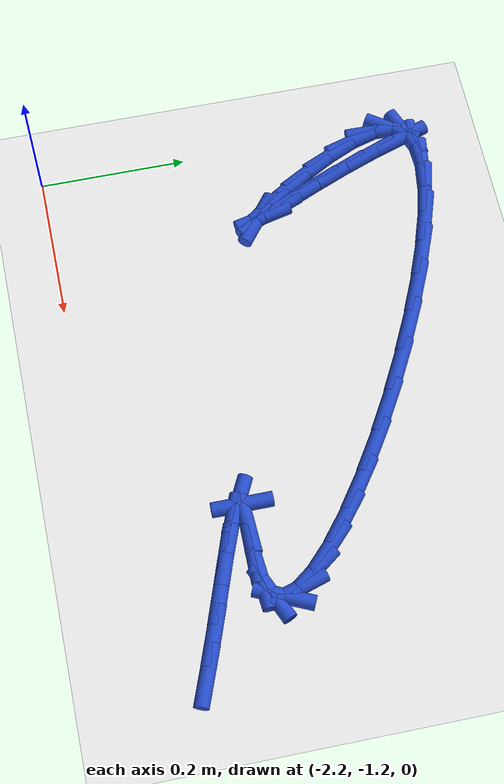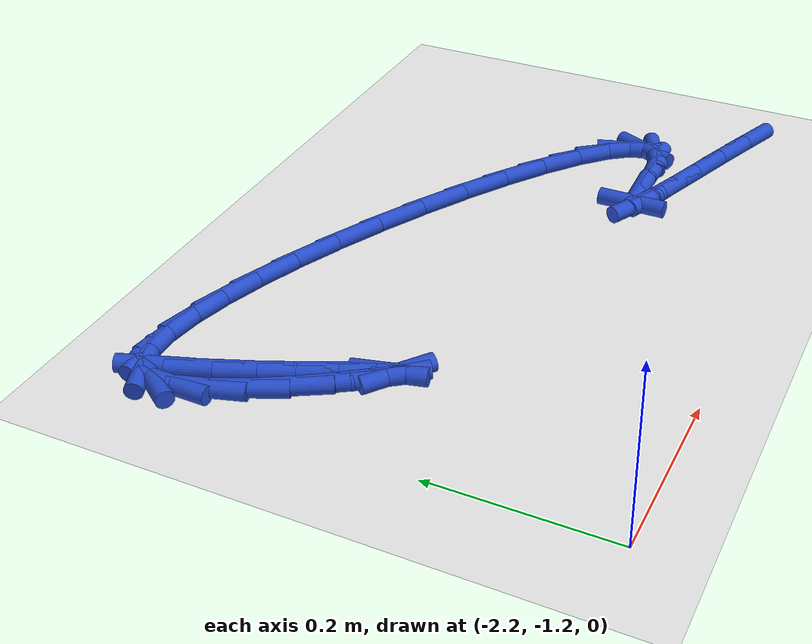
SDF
<sdf version="1.6">
 <world name="default">
  <model name="ground_plane">
   <static>1</static>
   <link name="link">
    <collision name="collision">
     <geometry><plane><normal>0 0 1</normal><size>100 100</size></plane></geometry>
     <surface><friction><ode><mu>100</mu><mu2>50</mu2></ode></friction></surface>
    </collision>
    <visual name="visual">
     <cast_shadows>0</cast_shadows>
     <geometry><plane><normal>0 0 1</normal><size>100 100</size></plane></geometry>
     <material>
      <script><uri>file://media/materials/scripts/gazebo.material</uri><name>Gazebo/WhiteGlow</name></script>
     </material>
    </visual>
   </link>
  </model>
  <model name="line">
   <link name="link_153">
    <pose>-2.170215699457804 -0.694800122695668 0.01 0 1.57 -1.2477217496031399</pose>
    <collision name="collision">
     <geometry><cylinder><radius>0.01</radius><length>0.08</length></cylinder></geometry>
    </collision>
    <visual name="visual">
     <material>
      <script><name>Gazebo/Blue</name><uri>file://media/materials/scripts/gazebo.material</uri></script>
     </material>
     <geometry><cylinder><radius>0.01</radius><length>0.08</length></cylinder></geometry>
    </visual>
   </link>
   <link name="link_154">
    <pose>-2.154115652462246 -0.7428879386356306 0.01 0 1.57 -1.2071258945588343</pose>
    <collision name="collision">
     <geometry><cylinder><radius>0.01</radius><length>0.08</length></cylinder></geometry>
    </collision>
    <visual name="visual">
     <material>
      <script><name>Gazebo/Blue</name><uri>file://media/materials/scripts/gazebo.material</uri></script>
     </material>
     <geometry><cylinder><radius>0.01</radius><length>0.08</length></cylinder></geometry>
    </visual>
   </link>
   <link name="link_155">
    <pose>-2.136890699045401 -0.7881454086210561 0.01 0 1.57 -1.177715644481559</pose>
    <collision name="collision">
     <geometry><cylinder><radius>0.01</radius><length>0.08</length></cylinder></geometry>
    </collision>
    <visual name="visual">
     <material>
      <script><name>Gazebo/Blue</name><uri>file://media/materials/scripts/gazebo.material</uri></script>
     </material>
     <geometry><cylinder><radius>0.01</radius><length>0.08</length></cylinder></geometry>
    </visual>
   </link>
   <link name="link_156">
    <pose>-2.119939343899335 -0.829025470080285 0.01 0 1.57 -1.158717741874571</pose>
    <collision name="collision">
     <geometry><cylinder><radius>0.01</radius><length>0.08</length></cylinder></geometry>
    </collision>
    <visual name="visual">
     <material>
      <script><name>Gazebo/Blue</name><uri>file://media/materials/scripts/gazebo.material</uri></script>
     </material>
     <geometry><cylinder><radius>0.01</radius><length>0.08</length></cylinder></geometry>
    </visual>
   </link>
   <link name="link_157">
    <pose>-2.104660091716117 -0.8639810604416562 0.01 0 1.57 -1.1527692550475948</pose>
    <collision name="collision">
     <geometry><cylinder><radius>0.01</radius><length>0.08</length></cylinder></geometry>
    </collision>
    <visual name="visual">
     <material>
      <script><name>Gazebo/Blue</name><uri>file://media/materials/scripts/gazebo.material</uri></script>
     </material>
     <geometry><cylinder><radius>0.01</radius><length>0.08</length></cylinder></geometry>
    </visual>
   </link>
   <link name="link_158">
    <pose>-2.092451447187813 -0.8914651171335098 0.01 0 1.57 -1.1739033305791617</pose>
    <collision name="collision">
     <geometry><cylinder><radius>0.01</radius><length>0.08</length></cylinder></geometry>
    </collision>
    <visual name="visual">
     <material>
      <script><name>Gazebo/Blue</name><uri>file://media/materials/scripts/gazebo.material</uri></script>
     </material>
     <geometry><cylinder><radius>0.01</radius><length>0.08</length></cylinder></geometry>
    </visual>
   </link>
   <link name="link_159">
    <pose>-2.084711915006492 -0.9099305775841868 0.01 0 1.57 -1.3381303744596913</pose>
    <collision name="collision">
     <geometry><cylinder><radius>0.01</radius><length>0.08</length></cylinder></geometry>
    </collision>
    <visual name="visual">
     <material>
      <script><name>Gazebo/Blue</name><uri>file://media/materials/scripts/gazebo.material</uri></script>
     </material>
     <geometry><cylinder><radius>0.01</radius><length>0.08</length></cylinder></geometry>
    </visual>
   </link>
   <link name="link_160">
    <pose>-2.0828399998642193 -0.9178303792220269 0.01 0 1.57 -0.663052779532103</pose>
    <collision name="collision">
     <geometry><cylinder><radius>0.01</radius><length>0.08</length></cylinder></geometry>
    </collision>
    <visual name="visual">
     <material>
      <script><name>Gazebo/Blue</name><uri>file://media/materials/scripts/gazebo.material</uri></script>
     </material>
     <geometry><cylinder><radius>0.01</radius><length>0.08</length></cylinder></geometry>
    </visual>
   </link>
   <link name="link_161">
    <pose>-2.0882342048246754 -0.9136174612802785 0.01 0 1.57 -0.9079224944514392</pose>
    <collision name="collision">
     <geometry><cylinder><radius>0.01</radius><length>0.08</length></cylinder></geometry>
    </collision>
    <visual name="visual">
     <material>
      <script><name>Gazebo/Blue</name><uri>file://media/materials/scripts/gazebo.material</uri></script>
     </material>
     <geometry><cylinder><radius>0.01</radius><length>0.08</length></cylinder></geometry>
    </visual>
   </link>
   <link name="link_162">
    <pose>-2.1015113373813183 -0.8966111961324358 0.01 0 1.57 -0.9658640324050661</pose>
    <collision name="collision">
     <geometry><cylinder><radius>0.01</radius><length>0.08</length></cylinder></geometry>
    </collision>
    <visual name="visual">
     <material>
      <script><name>Gazebo/Blue</name><uri>file://media/materials/scripts/gazebo.material</uri></script>
     </material>
     <geometry><cylinder><radius>0.01</radius><length>0.08</length></cylinder></geometry>
    </visual>
   </link>
   <link name="link_163">
    <pose>-2.1202804247890605 -0.8694647865797507 0.01 0 1.57 -1.0121547896068612</pose>
    <collision name="collision">
     <geometry><cylinder><radius>0.01</radius><length>0.08</length></cylinder></geometry>
    </collision>
    <visual name="visual">
     <material>
      <script><name>Gazebo/Blue</name><uri>file://media/materials/scripts/gazebo.material</uri></script>
     </material>
     <geometry><cylinder><radius>0.01</radius><length>0.08</length></cylinder></geometry>
    </visual>
   </link>
   <link name="link_164">
    <pose>-2.141427175842185 -0.8356331632432495 0.01 0 1.57 -1.0674131225052652</pose>
    <collision name="collision">
     <geometry><cylinder><radius>0.01</radius><length>0.08</length></cylinder></geometry>
    </collision>
    <visual name="visual">
     <material>
      <script><name>Gazebo/Blue</name><uri>file://media/materials/scripts/gazebo.material</uri></script>
     </material>
     <geometry><cylinder><radius>0.01</radius><length>0.08</length></cylinder></geometry>
    </visual>
   </link>
   <link name="link_165">
    <pose>-2.161837299334973 -0.7985712567439587 0.01 0 1.57 -1.1483389298229063</pose>
    <collision name="collision">
     <geometry><cylinder><radius>0.01</radius><length>0.08</length></cylinder></geometry>
    </collision>
    <visual name="visual">
     <material>
      <script><name>Gazebo/Blue</name><uri>file://media/materials/scripts/gazebo.material</uri></script>
     </material>
     <geometry><cylinder><radius>0.01</radius><length>0.08</length></cylinder></geometry>
    </visual>
   </link>
   <link name="link_166">
    <pose>-2.178396504061706 -0.7617339977029077 0.01 0 1.57 -1.2891436003595655</pose>
    <collision name="collision">
     <geometry><cylinder><radius>0.01</radius><length>0.08</length></cylinder></geometry>
    </collision>
    <visual name="visual">
     <material>
      <script><name>Gazebo/Blue</name><uri>file://media/materials/scripts/gazebo.material</uri></script>
     </material>
     <geometry><cylinder><radius>0.01</radius><length>0.08</length></cylinder></geometry>
    </visual>
   </link>
   <link name="link_167">
    <pose>-2.187990498816666 -0.7285763167411219 0.01 0 1.57 1.5533036885885039</pose>
    <collision name="collision">
     <geometry><cylinder><radius>0.01</radius><length>0.08</length></cylinder></geometry>
    </collision>
    <visual name="visual">
     <material>
      <script><name>Gazebo/Blue</name><uri>file://media/materials/scripts/gazebo.material</uri></script>
     </material>
     <geometry><cylinder><radius>0.01</radius><length>0.08</length></cylinder></geometry>
    </visual>
   </link>
   <link name="link_168">
    <pose>-2.187534748318673 -0.7025251284484969 0.01 0 1.57 0.963632447593937</pose>
    <collision name="collision">
     <geometry><cylinder><radius>0.01</radius><length>0.08</length></cylinder></geometry>
    </collision>
    <visual name="visual">
     <material>
      <script><name>Gazebo/Blue</name><uri>file://media/materials/scripts/gazebo.material</uri></script>
     </material>
     <geometry><cylinder><radius>0.01</radius><length>0.08</length></cylinder></geometry>
    </visual>
   </link>
   <link name="link_169">
    <pose>-2.1756433851299075 -0.6854080043623427 0.01 0 1.57 0.3780579672440051</pose>
    <collision name="collision">
     <geometry><cylinder><radius>0.01</radius><length>0.08</length></cylinder></geometry>
    </collision>
    <visual name="visual">
     <material>
      <script><name>Gazebo/Blue</name><uri>file://media/materials/scripts/gazebo.material</uri></script>
     </material>
     <geometry><cylinder><radius>0.01</radius><length>0.08</length></cylinder></geometry>
    </visual>
   </link>
   <link name="link_170">
    <pose>-2.153514805560977 -0.6766193597744791 0.01 0 1.57 0.04100315836611371</pose>
    <collision name="collision">
     <geometry><cylinder><radius>0.01</radius><length>0.08</length></cylinder></geometry>
    </collision>
    <visual name="visual">
     <material>
      <script><name>Gazebo/Blue</name><uri>file://media/materials/scripts/gazebo.material</uri></script>
     </material>
     <geometry><cylinder><radius>0.01</radius><length>0.08</length></cylinder></geometry>
    </visual>
   </link>
   <link name="link_171">
    <pose>-2.1225641153405865 -0.6753495720280347 0.01 0 1.57 -0.14086921430115382</pose>
    <collision name="collision">
     <geometry><cylinder><radius>0.01</radius><length>0.08</length></cylinder></geometry>
    </collision>
    <visual name="visual">
     <material>
      <script><name>Gazebo/Blue</name><uri>file://media/materials/scripts/gazebo.material</uri></script>
     </material>
     <geometry><cylinder><radius>0.01</radius><length>0.08</length></cylinder></geometry>
    </visual>
   </link>
   <link name="link_172">
    <pose>-2.084206420197441 -0.6807890184661382 0.01 0 1.57 -0.25031214654142153</pose>
    <collision name="collision">
     <geometry><cylinder><radius>0.01</radius><length>0.08</length></cylinder></geometry>
    </collision>
    <visual name="visual">
     <material>
      <script><name>Gazebo/Blue</name><uri>file://media/materials/scripts/gazebo.material</uri></script>
     </material>
     <geometry><cylinder><radius>0.01</radius><length>0.08</length></cylinder></geometry>
    </visual>
   </link>
   <link name="link_173">
    <pose>-2.0398568258602494 -0.6921280764319176 0.01 0 1.57 -0.32396093412667765</pose>
    <collision name="collision">
     <geometry><cylinder><radius>0.01</radius><length>0.08</length></cylinder></geometry>
    </collision>
    <visual name="visual">
     <material>
      <script><name>Gazebo/Blue</name><uri>file://media/materials/scripts/gazebo.material</uri></script>
     </material>
     <geometry><cylinder><radius>0.01</radius><length>0.08</length></cylinder></geometry>
    </visual>
   </link>
   <link name="link_174">
    <pose>-1.9909304380577157 -0.7085571232685017 0.01 0 1.57 -0.37842234287689996</pose>
    <collision name="collision">
     <geometry><cylinder><radius>0.01</radius><length>0.08</length></cylinder></geometry>
    </collision>
    <visual name="visual">
     <material>
      <script><name>Gazebo/Blue</name><uri>file://media/materials/scripts/gazebo.material</uri></script>
     </material>
     <geometry><cylinder><radius>0.01</radius><length>0.08</length></cylinder></geometry>
    </visual>
   </link>
   <link name="link_175">
    <pose>-1.9388423625185476 -0.7292665363190187 0.01 0 1.57 -0.4221517895343474</pose>
    <collision name="collision">
     <geometry><cylinder><radius>0.01</radius><length>0.08</length></cylinder></geometry>
    </collision>
    <visual name="visual">
     <material>
      <script><name>Gazebo/Blue</name><uri>file://media/materials/scripts/gazebo.material</uri></script>
     </material>
     <geometry><cylinder><radius>0.01</radius><length>0.08</length></cylinder></geometry>
    </visual>
   </link>
   <link name="link_176">
    <pose>-1.8850077049714502 -0.7534466929265976 0.01 0 1.57 -0.46007015790092187</pose>
    <collision name="collision">
     <geometry><cylinder><radius>0.01</radius><length>0.08</length></cylinder></geometry>
    </collision>
    <visual name="visual">
     <material>
      <script><name>Gazebo/Blue</name><uri>file://media/materials/scripts/gazebo.material</uri></script>
     </material>
     <geometry><cylinder><radius>0.01</radius><length>0.08</length></cylinder></geometry>
    </visual>
   </link>
   <link name="link_177">
    <pose>-1.8308415711451294 -0.7802879704343663 0.01 0 1.57 -0.4955448234560549</pose>
    <collision name="collision">
     <geometry><cylinder><radius>0.01</radius><length>0.08</length></cylinder></geometry>
    </collision>
    <visual name="visual">
     <material>
      <script><name>Gazebo/Blue</name><uri>file://media/materials/scripts/gazebo.material</uri></script>
     </material>
     <geometry><cylinder><radius>0.01</radius><length>0.08</length></cylinder></geometry>
    </visual>
   </link>
   <link name="link_178">
    <pose>-1.77775906676829 -0.808980746185453 0.01 0 1.57 -0.5314228246272624</pose>
    <collision name="collision">
     <geometry><cylinder><radius>0.01</radius><length>0.08</length></cylinder></geometry>
    </collision>
    <visual name="visual">
     <material>
      <script><name>Gazebo/Blue</name><uri>file://media/materials/scripts/gazebo.material</uri></script>
     </material>
     <geometry><cylinder><radius>0.01</radius><length>0.08</length></cylinder></geometry>
    </visual>
   </link>
   <link name="link_179">
    <pose>-1.7271752975696408 -0.8387153975229873 0.01 0 1.57 -0.5708037295260241</pose>
    <collision name="collision">
     <geometry><cylinder><radius>0.01</radius><length>0.08</length></cylinder></geometry>
    </collision>
    <visual name="visual">
     <material>
      <script><name>Gazebo/Blue</name><uri>file://media/materials/scripts/gazebo.material</uri></script>
     </material>
     <geometry><cylinder><radius>0.01</radius><length>0.08</length></cylinder></geometry>
    </visual>
   </link>
   <link name="link_180">
    <pose>-1.6805053692778857 -0.8686823017900968 0.01 0 1.57 -0.6180077087129339</pose>
    <collision name="collision">
     <geometry><cylinder><radius>0.01</radius><length>0.08</length></cylinder></geometry>
    </collision>
    <visual name="visual">
     <material>
      <script><name>Gazebo/Blue</name><uri>file://media/materials/scripts/gazebo.material</uri></script>
     </material>
     <geometry><cylinder><radius>0.01</radius><length>0.08</length></cylinder></geometry>
    </visual>
   </link>
   <link name="link_181">
    <pose>-1.6391643876217308 -0.898071836329911 0.01 0 1.57 -0.6804427161337173</pose>
    <collision name="collision">
     <geometry><cylinder><radius>0.01</radius><length>0.08</length></cylinder></geometry>
    </collision>
    <visual name="visual">
     <material>
      <script><name>Gazebo/Blue</name><uri>file://media/materials/scripts/gazebo.material</uri></script>
     </material>
     <geometry><cylinder><radius>0.01</radius><length>0.08</length></cylinder></geometry>
    </visual>
   </link>
   <link name="link_182">
    <pose>-1.6045674583298835 -0.926074378485557 0.01 0 1.57 -0.773304584632052</pose>
    <collision name="collision">
     <geometry><cylinder><radius>0.01</radius><length>0.08</length></cylinder></geometry>
    </collision>
    <visual name="visual">
     <material>
      <script><name>Gazebo/Blue</name><uri>file://media/materials/scripts/gazebo.material</uri></script>
     </material>
     <geometry><cylinder><radius>0.01</radius><length>0.08</length></cylinder></geometry>
    </visual>
   </link>
   <link name="link_183">
    <pose>-1.5781296871310495 -0.9518803056001635 0.01 0 1.57 -0.9339602123465944</pose>
    <collision name="collision">
     <geometry><cylinder><radius>0.01</radius><length>0.08</length></cylinder></geometry>
    </collision>
    <visual name="visual">
     <material>
      <script><name>Gazebo/Blue</name><uri>file://media/materials/scripts/gazebo.material</uri></script>
     </material>
     <geometry><cylinder><radius>0.01</radius><length>0.08</length></cylinder></geometry>
    </visual>
   </link>
   <link name="link_184">
    <pose>-1.561266179753934 -0.9746799950168594 0.01 0 1.57 -1.2707121313820173</pose>
    <collision name="collision">
     <geometry><cylinder><radius>0.01</radius><length>0.08</length></cylinder></geometry>
    </collision>
    <visual name="visual">
     <material>
      <script><name>Gazebo/Blue</name><uri>file://media/materials/scripts/gazebo.material</uri></script>
     </material>
     <geometry><cylinder><radius>0.01</radius><length>0.08</length></cylinder></geometry>
    </visual>
   </link>
   <link name="link_185">
    <pose>-1.5553920419272436 -0.9936638240787732 0.01 0 1.57 1.1439485652631205</pose>
    <collision name="collision">
     <geometry><cylinder><radius>0.01</radius><length>0.08</length></cylinder></geometry>
    </collision>
    <visual name="visual">
     <material>
      <script><name>Gazebo/Blue</name><uri>file://media/materials/scripts/gazebo.material</uri></script>
     </material>
     <geometry><cylinder><radius>0.01</radius><length>0.08</length></cylinder></geometry>
    </visual>
   </link>
   <link name="link_186">
    <pose>-1.5619223793796841 -1.0080221701290333 0.01 0 1.57 0.4132412813301607</pose>
    <collision name="collision">
     <geometry><cylinder><radius>0.01</radius><length>0.08</length></cylinder></geometry>
    </collision>
    <visual name="visual">
     <material>
      <script><name>Gazebo/Blue</name><uri>file://media/materials/scripts/gazebo.material</uri></script>
     </material>
     <geometry><cylinder><radius>0.01</radius><length>0.08</length></cylinder></geometry>
    </visual>
   </link>
   <link name="link_187">
    <pose>-1.582272297839962 -1.0169454105107683 0.01 0 1.57 0.08378442032906228</pose>
    <collision name="collision">
     <geometry><cylinder><radius>0.01</radius><length>0.08</length></cylinder></geometry>
    </collision>
    <visual name="visual">
     <material>
      <script><name>Gazebo/Blue</name><uri>file://media/materials/scripts/gazebo.material</uri></script>
     </material>
     <geometry><cylinder><radius>0.01</radius><length>0.08</length></cylinder></geometry>
    </visual>
   </link>
   <link name="link_188">
    <pose>-1.6170583370674254 -1.0198667776769559 0.01 0 1.57 -0.010859872438507093</pose>
    <collision name="collision">
     <geometry><cylinder><radius>0.01</radius><length>0.08</length></cylinder></geometry>
    </collision>
    <visual name="visual">
     <material>
      <script><name>Gazebo/Blue</name><uri>file://media/materials/scripts/gazebo.material</uri></script>
     </material>
     <geometry><cylinder><radius>0.01</radius><length>0.08</length></cylinder></geometry>
    </visual>
   </link>
   <link name="link_189">
    <pose>-1.6563054905176786 -1.0194405418404788 0.01 0 1.57 0.04437790152154037</pose>
    <collision name="collision">
     <geometry><cylinder><radius>0.01</radius><length>0.08</length></cylinder></geometry>
    </collision>
    <visual name="visual">
     <material>
      <script><name>Gazebo/Blue</name><uri>file://media/materials/scripts/gazebo.material</uri></script>
     </material>
     <geometry><cylinder><radius>0.01</radius><length>0.08</length></cylinder></geometry>
    </visual>
   </link>
   <link name="link_190">
    <pose>-1.6825282725349955 -1.0206050184181854 0.01 0 1.57 -1.5707522772151619</pose>
    <collision name="collision">
     <geometry><cylinder><radius>0.01</radius><length>0.08</length></cylinder></geometry>
    </collision>
    <visual name="visual">
     <material>
      <script><name>Gazebo/Blue</name><uri>file://media/materials/scripts/gazebo.material</uri></script>
     </material>
     <geometry><cylinder><radius>0.01</radius><length>0.08</length></cylinder></geometry>
    </visual>
   </link>
   <link name="link_191">
    <pose>-1.6825279825698032 -1.0271877189538046 0.01 0 1.57 -0.46546103360215846</pose>
    <collision name="collision">
     <geometry><cylinder><radius>0.01</radius><length>0.08</length></cylinder></geometry>
    </collision>
    <visual name="visual">
     <material>
      <script><name>Gazebo/Blue</name><uri>file://media/materials/scripts/gazebo.material</uri></script>
     </material>
     <geometry><cylinder><radius>0.01</radius><length>0.08</length></cylinder></geometry>
    </visual>
   </link>
   <link name="link_192">
    <pose>-1.6595510651910885 -1.0387283086021353 0.01 0 1.57 -0.3690360266065304</pose>
    <collision name="collision">
     <geometry><cylinder><radius>0.01</radius><length>0.08</length></cylinder></geometry>
    </collision>
    <visual name="visual">
     <material>
      <script><name>Gazebo/Blue</name><uri>file://media/materials/scripts/gazebo.material</uri></script>
     </material>
     <geometry><cylinder><radius>0.01</radius><length>0.08</length></cylinder></geometry>
    </visual>
   </link>
   <link name="link_193">
    <pose>-1.6206451824210226 -1.0537753371211414 0.01 0 1.57 -0.34367641129616083</pose>
    <collision name="collision">
     <geometry><cylinder><radius>0.01</radius><length>0.08</length></cylinder></geometry>
    </collision>
    <visual name="visual">
     <material>
      <script><name>Gazebo/Blue</name><uri>file://media/materials/scripts/gazebo.material</uri></script>
     </material>
     <geometry><cylinder><radius>0.01</radius><length>0.08</length></cylinder></geometry>
    </visual>
   </link>
   <link name="link_194">
    <pose>-1.5728579962817781 -1.0708773542687877 0.01 0 1.57 -0.3427293530426203</pose>
    <collision name="collision">
     <geometry><cylinder><radius>0.01</radius><length>0.08</length></cylinder></geometry>
    </collision>
    <visual name="visual">
     <material>
      <script><name>Gazebo/Blue</name><uri>file://media/materials/scripts/gazebo.material</uri></script>
     </material>
     <geometry><cylinder><radius>0.01</radius><length>0.08</length></cylinder></geometry>
    </visual>
   </link>
   <link name="link_195">
    <pose>-1.5232355742966357 -1.0885831668706354 0.01 0 1.57 -0.3557406434883084</pose>
    <collision name="collision">
     <geometry><cylinder><radius>0.01</radius><length>0.08</length></cylinder></geometry>
    </collision>
    <visual name="visual">
     <material>
      <script><name>Gazebo/Blue</name><uri>file://media/materials/scripts/gazebo.material</uri></script>
     </material>
     <geometry><cylinder><radius>0.01</radius><length>0.08</length></cylinder></geometry>
    </visual>
   </link>
   <link name="link_196">
    <pose>-1.4771247819672888 -1.1057155297518806 0.01 0 1.57 -0.36620749705657957</pose>
    <collision name="collision">
     <geometry><cylinder><radius>0.01</radius><length>0.08</length></cylinder></geometry>
    </collision>
    <visual name="visual">
     <material>
      <script><name>Gazebo/Blue</name><uri>file://media/materials/scripts/gazebo.material</uri></script>
     </material>
     <geometry><cylinder><radius>0.01</radius><length>0.08</length></cylinder></geometry>
    </visual>
   </link>
  </model>
 </world>
</sdf>
